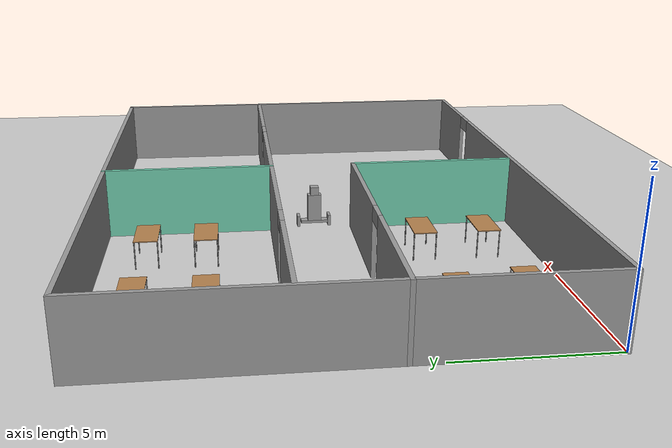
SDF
<sdf version="1.6">
 <world name="default">
  <model name="ground_plane">
   <static>1</static>
   <link name="link">
    <collision name="collision">
     <geometry><plane><normal>0 0 1</normal><size>100 100</size></plane></geometry>
     <surface>
      <contact><collide_bitmask>65535</collide_bitmask></contact>
      <friction><ode><mu>100</mu><mu2>50</mu2></ode></friction>
     </surface>
    </collision>
    <visual name="visual">
     <cast_shadows>0</cast_shadows>
     <geometry><plane><normal>0 0 1</normal><size>100 100</size></plane></geometry>
     <material>
      <script><uri>file://media/materials/scripts/gazebo.material</uri><name>Gazebo/Grey</name></script>
     </material>
    </visual>
   </link>
  </model>
  <model name="mybuilding">
   <pose>10 7.5 0 0 -0 0</pose>
   <link name="Wall_11">
    <collision name="Wall_11_Collision">
     <geometry><box><size>15.15 0.15 2.5</size></box></geometry>
     <pose>0 0 1.25 0 -0 0</pose>
    </collision>
    <visual name="Wall_11_Visual">
     <pose>0 0 1.25 0 -0 0</pose>
     <geometry><box><size>15.15 0.15 2.5</size></box></geometry>
     <material>
      <script><uri>file://media/materials/scripts/gazebo.material</uri><name>Gazebo/Grey</name></script>
      <ambient>1 1 1 1</ambient>
     </material>
     <meta><layer>0</layer></meta>
    </visual>
    <pose>-10 0 0 0 -0 1.5708</pose>
   </link>
   <link name="Wall_13">
    <collision name="Wall_13_Collision">
     <geometry><box><size>20.15 0.15 2.5</size></box></geometry>
     <pose>0 0 1.25 0 -0 0</pose>
    </collision>
    <visual name="Wall_13_Visual">
     <pose>0 0 1.25 0 -0 0</pose>
     <geometry><box><size>20.15 0.15 2.5</size></box></geometry>
     <material>
      <script><uri>file://media/materials/scripts/gazebo.material</uri><name>Gazebo/Grey</name></script>
      <ambient>1 1 1 1</ambient>
     </material>
     <meta><layer>0</layer></meta>
    </visual>
    <pose>0 7.5 0 0 -0 0</pose>
   </link>
   <link name="Wall_15">
    <collision name="Wall_15_Collision">
     <geometry><box><size>15.15 0.15 2.5</size></box></geometry>
     <pose>0 0 1.25 0 -0 0</pose>
    </collision>
    <visual name="Wall_15_Visual">
     <pose>0 0 1.25 0 -0 0</pose>
     <geometry><box><size>15.15 0.15 2.5</size></box></geometry>
     <material>
      <script><uri>file://media/materials/scripts/gazebo.material</uri><name>Gazebo/Grey</name></script>
      <ambient>1 1 1 1</ambient>
     </material>
     <meta><layer>0</layer></meta>
    </visual>
    <pose>10 0 0 0 0 -1.5708</pose>
   </link>
   <link name="Wall_17">
    <pose>0 1.5 0 0 -0 0</pose>
    <visual name="Wall_17_Visual_0">
     <pose>-7.81586 0 1.25 0 -0 0</pose>
     <geometry><box><size>4.51827 0.15 2.5</size></box></geometry>
     <material>
      <script><uri>file://media/materials/scripts/gazebo.material</uri><name>Gazebo/Grey</name></script>
      <ambient>1 1 1 1</ambient>
     </material>
     <meta><layer>0</layer></meta>
    </visual>
    <collision name="Wall_17_Collision_0">
     <geometry><box><size>4.51827 0.15 2.5</size></box></geometry>
     <pose>-7.81586 0 1.25 0 -0 0</pose>
    </collision>
    <visual name="Wall_17_Visual_1">
     <pose>0.10099 0 1.25 0 -0 0</pose>
     <geometry><box><size>9.51544 0.15 2.5</size></box></geometry>
     <material>
      <script><uri>file://media/materials/scripts/gazebo.material</uri><name>Gazebo/Grey</name></script>
      <ambient>1 1 1 1</ambient>
     </material>
     <meta><layer>0</layer></meta>
    </visual>
    <collision name="Wall_17_Collision_1">
     <geometry><box><size>9.51544 0.15 2.5</size></box></geometry>
     <pose>0.10099 0 1.25 0 -0 0</pose>
    </collision>
    <visual name="Wall_17_Visual_2">
     <pose>7.91685 0 1.25 0 -0 0</pose>
     <geometry><box><size>4.31629 0.15 2.5</size></box></geometry>
     <material>
      <script><uri>file://media/materials/scripts/gazebo.material</uri><name>Gazebo/Grey</name></script>
      <ambient>1 1 1 1</ambient>
     </material>
     <meta><layer>0</layer></meta>
    </visual>
    <collision name="Wall_17_Collision_2">
     <geometry><box><size>4.31629 0.15 2.5</size></box></geometry>
     <pose>7.91685 0 1.25 0 -0 0</pose>
    </collision>
    <visual name="Wall_17_Visual_3">
     <pose>-5.10673 0 2.25 0 -0 0</pose>
     <geometry><box><size>0.9 0.15 0.5</size></box></geometry>
     <material>
      <script><uri>file://media/materials/scripts/gazebo.material</uri><name>Gazebo/Grey</name></script>
      <ambient>1 1 1 1</ambient>
     </material>
     <meta><layer>0</layer></meta>
    </visual>
    <collision name="Wall_17_Collision_3">
     <geometry><box><size>0.9 0.15 0.5</size></box></geometry>
     <pose>-5.10673 0 2.25 0 -0 0</pose>
    </collision>
    <visual name="Wall_17_Visual_4">
     <pose>5.30871 0 2.25 0 -0 0</pose>
     <geometry><box><size>0.9 0.15 0.5</size></box></geometry>
     <material>
      <script><uri>file://media/materials/scripts/gazebo.material</uri><name>Gazebo/Grey</name></script>
      <ambient>1 1 1 1</ambient>
     </material>
     <meta><layer>0</layer></meta>
    </visual>
    <collision name="Wall_17_Collision_4">
     <geometry><box><size>0.9 0.15 0.5</size></box></geometry>
     <pose>5.30871 0 2.25 0 -0 0</pose>
    </collision>
   </link>
   <link name="Wall_19">
    <collision name="Wall_19_Collision">
     <geometry><box><size>6.15 0.15 2.5</size></box></geometry>
     <pose>0 0 1.25 0 -0 0</pose>
    </collision>
    <visual name="Wall_19_Visual">
     <pose>0 0 1.25 0 -0 0</pose>
     <geometry><box><size>6.15 0.15 2.5</size></box></geometry>
     <material>
      <script><uri>file://media/materials/scripts/gazebo.material</uri><name>Gazebo/Grey</name></script>
      <ambient>0.435294 0.796078 0.67451 1</ambient>
     </material>
     <meta><layer>0</layer></meta>
    </visual>
    <pose>0 4.5 0 0 0 -1.5708</pose>
   </link>
   <link name="Wall_21">
    <pose>-5 -1.5 0 0 -0 0</pose>
    <visual name="Wall_21_Visual_0">
     <pose>-2.77518 0 1.25 0 -0 0</pose>
     <geometry><box><size>4.59964 0.15 2.5</size></box></geometry>
     <material>
      <script><uri>file://media/materials/scripts/gazebo.material</uri><name>Gazebo/Grey</name></script>
      <ambient>1 1 1 1</ambient>
     </material>
     <meta><layer>0</layer></meta>
    </visual>
    <collision name="Wall_21_Collision_0">
     <geometry><box><size>4.59964 0.15 2.5</size></box></geometry>
     <pose>-2.77518 0 1.25 0 -0 0</pose>
    </collision>
    <visual name="Wall_21_Visual_1">
     <pose>2.74982 0 1.25 0 -0 0</pose>
     <geometry><box><size>4.65036 0.15 2.5</size></box></geometry>
     <material>
      <script><uri>file://media/materials/scripts/gazebo.material</uri><name>Gazebo/Grey</name></script>
      <ambient>1 1 1 1</ambient>
     </material>
     <meta><layer>0</layer></meta>
    </visual>
    <collision name="Wall_21_Collision_1">
     <geometry><box><size>4.65036 0.15 2.5</size></box></geometry>
     <pose>2.74982 0 1.25 0 -0 0</pose>
    </collision>
    <visual name="Wall_21_Visual_2">
     <pose>-0.02536 0 2.25 0 -0 0</pose>
     <geometry><box><size>0.9 0.15 0.5</size></box></geometry>
     <material>
      <script><uri>file://media/materials/scripts/gazebo.material</uri><name>Gazebo/Grey</name></script>
      <ambient>1 1 1 1</ambient>
     </material>
     <meta><layer>0</layer></meta>
    </visual>
    <collision name="Wall_21_Collision_2">
     <geometry><box><size>0.9 0.15 0.5</size></box></geometry>
     <pose>-0.02536 0 2.25 0 -0 0</pose>
    </collision>
   </link>
   <link name="Wall_24">
    <collision name="Wall_24_Collision">
     <geometry><box><size>6.15 0.15 2.5</size></box></geometry>
     <pose>0 0 1.25 0 -0 0</pose>
    </collision>
    <visual name="Wall_24_Visual">
     <pose>0 0 1.25 0 -0 0</pose>
     <geometry><box><size>6.15 0.15 2.5</size></box></geometry>
     <material>
      <script><uri>file://media/materials/scripts/gazebo.material</uri><name>Gazebo/Grey</name></script>
      <ambient>0.435294 0.796078 0.67451 1</ambient>
     </material>
     <meta><layer>0</layer></meta>
    </visual>
    <pose>0 -4.5 0 0 0 -1.5708</pose>
   </link>
   <link name="Wall_9">
    <pose>0 -7.5 0 0 -0 0</pose>
    <visual name="Wall_9_Visual_0">
     <pose>-2.20129 0 1.25 0 -0 0</pose>
     <geometry><box><size>15.7474 0.15 2.5</size></box></geometry>
     <material>
      <script><uri>file://media/materials/scripts/gazebo.material</uri><name>Gazebo/Grey</name></script>
      <ambient>1 1 1 1</ambient>
     </material>
     <meta><layer>0</layer></meta>
    </visual>
    <collision name="Wall_9_Collision_0">
     <geometry><box><size>15.7474 0.15 2.5</size></box></geometry>
     <pose>-2.20129 0 1.25 0 -0 0</pose>
    </collision>
    <visual name="Wall_9_Visual_1">
     <pose>8.32371 0 1.25 0 -0 0</pose>
     <geometry><box><size>3.50258 0.15 2.5</size></box></geometry>
     <material>
      <script><uri>file://media/materials/scripts/gazebo.material</uri><name>Gazebo/Grey</name></script>
      <ambient>1 1 1 1</ambient>
     </material>
     <meta><layer>0</layer></meta>
    </visual>
    <collision name="Wall_9_Collision_1">
     <geometry><box><size>3.50258 0.15 2.5</size></box></geometry>
     <pose>8.32371 0 1.25 0 -0 0</pose>
    </collision>
    <visual name="Wall_9_Visual_2">
     <pose>6.12242 0 2.25 0 -0 0</pose>
     <geometry><box><size>0.9 0.15 0.5</size></box></geometry>
     <material>
      <script><uri>file://media/materials/scripts/gazebo.material</uri><name>Gazebo/Grey</name></script>
      <ambient>1 1 1 1</ambient>
     </material>
     <meta><layer>0</layer></meta>
    </visual>
    <collision name="Wall_9_Collision_2">
     <geometry><box><size>0.9 0.15 0.5</size></box></geometry>
     <pose>6.12242 0 2.25 0 -0 0</pose>
    </collision>
   </link>
   <static>1</static>
  </model>
  <model name="table_0">
   <static>1</static>
   <link name="link">
    <collision name="surface">
     <pose>0 0 1 0 -0 0</pose>
     <geometry><box><size>1.5 0.8 0.03</size></box></geometry>
     <surface><friction><ode><mu>0.6</mu><mu2>0.6</mu2></ode></friction></surface>
    </collision>
    <visual name="visual1">
     <pose>0 0 1 0 -0 0</pose>
     <geometry><box><size>1.5 0.8 0.03</size></box></geometry>
     <material>
      <script><uri>file://media/materials/scripts/gazebo.material</uri><name>Gazebo/Wood</name></script>
     </material>
    </visual>
    <collision name="front_left_leg">
     <pose>0.68 0.38 0.5 0 -0 0</pose>
     <geometry><cylinder><radius>0.02</radius><length>1</length></cylinder></geometry>
    </collision>
    <visual name="front_left_leg">
     <pose>0.68 0.38 0.5 0 -0 0</pose>
     <geometry><cylinder><radius>0.02</radius><length>1</length></cylinder></geometry>
     <material>
      <script><uri>file://media/materials/scripts/gazebo.material</uri><name>Gazebo/Grey</name></script>
     </material>
    </visual>
    <collision name="front_right_leg">
     <pose>0.68 -0.38 0.5 0 -0 0</pose>
     <geometry><cylinder><radius>0.02</radius><length>1</length></cylinder></geometry>
    </collision>
    <visual name="front_right_leg">
     <pose>0.68 -0.38 0.5 0 -0 0</pose>
     <geometry><cylinder><radius>0.02</radius><length>1</length></cylinder></geometry>
     <material>
      <script><uri>file://media/materials/scripts/gazebo.material</uri><name>Gazebo/Grey</name></script>
     </material>
    </visual>
    <collision name="back_right_leg">
     <pose>-0.68 -0.38 0.5 0 -0 0</pose>
     <geometry><cylinder><radius>0.02</radius><length>1</length></cylinder></geometry>
    </collision>
    <visual name="back_right_leg">
     <pose>-0.68 -0.38 0.5 0 -0 0</pose>
     <geometry><cylinder><radius>0.02</radius><length>1</length></cylinder></geometry>
     <material>
      <script><uri>file://media/materials/scripts/gazebo.material</uri><name>Gazebo/Grey</name></script>
     </material>
    </visual>
    <collision name="back_left_leg">
     <pose>-0.68 0.38 0.5 0 -0 0</pose>
     <geometry><cylinder><radius>0.02</radius><length>1</length></cylinder></geometry>
    </collision>
    <visual name="back_left_leg">
     <pose>-0.68 0.38 0.5 0 -0 0</pose>
     <geometry><cylinder><radius>0.02</radius><length>1</length></cylinder></geometry>
     <material>
      <script><uri>file://media/materials/scripts/gazebo.material</uri><name>Gazebo/Grey</name></script>
     </material>
    </visual>
   </link>
   <pose>7.55328 13.3497 0 0 -0 0</pose>
  </model>
  <model name="table_clone_2">
   <static>1</static>
   <link name="link">
    <collision name="surface">
     <pose>0 0 1 0 -0 0</pose>
     <geometry><box><size>1.5 0.8 0.03</size></box></geometry>
     <surface><friction><ode><mu>0.6</mu><mu2>0.6</mu2></ode></friction></surface>
    </collision>
    <visual name="visual1">
     <pose>0 0 1 0 -0 0</pose>
     <geometry><box><size>1.5 0.8 0.03</size></box></geometry>
     <material>
      <script><uri>file://media/materials/scripts/gazebo.material</uri><name>Gazebo/Wood</name></script>
     </material>
    </visual>
    <collision name="front_left_leg">
     <pose>0.68 0.38 0.5 0 -0 0</pose>
     <geometry><cylinder><radius>0.02</radius><length>1</length></cylinder></geometry>
    </collision>
    <visual name="front_left_leg">
     <pose>0.68 0.38 0.5 0 -0 0</pose>
     <geometry><cylinder><radius>0.02</radius><length>1</length></cylinder></geometry>
     <material>
      <script><uri>file://media/materials/scripts/gazebo.material</uri><name>Gazebo/Grey</name></script>
     </material>
    </visual>
    <collision name="front_right_leg">
     <pose>0.68 -0.38 0.5 0 -0 0</pose>
     <geometry><cylinder><radius>0.02</radius><length>1</length></cylinder></geometry>
    </collision>
    <visual name="front_right_leg">
     <pose>0.68 -0.38 0.5 0 -0 0</pose>
     <geometry><cylinder><radius>0.02</radius><length>1</length></cylinder></geometry>
     <material>
      <script><uri>file://media/materials/scripts/gazebo.material</uri><name>Gazebo/Grey</name></script>
     </material>
    </visual>
    <collision name="back_right_leg">
     <pose>-0.68 -0.38 0.5 0 -0 0</pose>
     <geometry><cylinder><radius>0.02</radius><length>1</length></cylinder></geometry>
    </collision>
    <visual name="back_right_leg">
     <pose>-0.68 -0.38 0.5 0 -0 0</pose>
     <geometry><cylinder><radius>0.02</radius><length>1</length></cylinder></geometry>
     <material>
      <script><uri>file://media/materials/scripts/gazebo.material</uri><name>Gazebo/Grey</name></script>
     </material>
    </visual>
    <collision name="back_left_leg">
     <pose>-0.68 0.38 0.5 0 -0 0</pose>
     <geometry><cylinder><radius>0.02</radius><length>1</length></cylinder></geometry>
    </collision>
    <visual name="back_left_leg">
     <pose>-0.68 0.38 0.5 0 -0 0</pose>
     <geometry><cylinder><radius>0.02</radius><length>1</length></cylinder></geometry>
     <material>
      <script><uri>file://media/materials/scripts/gazebo.material</uri><name>Gazebo/Grey</name></script>
     </material>
    </visual>
   </link>
   <pose>3.3068 13.4619 0 0 -0 0</pose>
  </model>
  <model name="table_3">
   <static>1</static>
   <link name="link">
    <collision name="surface">
     <pose>0 0 1 0 -0 0</pose>
     <geometry><box><size>1.5 0.8 0.03</size></box></geometry>
     <surface><friction><ode><mu>0.6</mu><mu2>0.6</mu2></ode></friction></surface>
    </collision>
    <visual name="visual1">
     <pose>0 0 1 0 -0 0</pose>
     <geometry><box><size>1.5 0.8 0.03</size></box></geometry>
     <material>
      <script><uri>file://media/materials/scripts/gazebo.material</uri><name>Gazebo/Wood</name></script>
     </material>
    </visual>
    <collision name="front_left_leg">
     <pose>0.68 0.38 0.5 0 -0 0</pose>
     <geometry><cylinder><radius>0.02</radius><length>1</length></cylinder></geometry>
    </collision>
    <visual name="front_left_leg">
     <pose>0.68 0.38 0.5 0 -0 0</pose>
     <geometry><cylinder><radius>0.02</radius><length>1</length></cylinder></geometry>
     <material>
      <script><uri>file://media/materials/scripts/gazebo.material</uri><name>Gazebo/Grey</name></script>
     </material>
    </visual>
    <collision name="front_right_leg">
     <pose>0.68 -0.38 0.5 0 -0 0</pose>
     <geometry><cylinder><radius>0.02</radius><length>1</length></cylinder></geometry>
    </collision>
    <visual name="front_right_leg">
     <pose>0.68 -0.38 0.5 0 -0 0</pose>
     <geometry><cylinder><radius>0.02</radius><length>1</length></cylinder></geometry>
     <material>
      <script><uri>file://media/materials/scripts/gazebo.material</uri><name>Gazebo/Grey</name></script>
     </material>
    </visual>
    <collision name="back_right_leg">
     <pose>-0.68 -0.38 0.5 0 -0 0</pose>
     <geometry><cylinder><radius>0.02</radius><length>1</length></cylinder></geometry>
    </collision>
    <visual name="back_right_leg">
     <pose>-0.68 -0.38 0.5 0 -0 0</pose>
     <geometry><cylinder><radius>0.02</radius><length>1</length></cylinder></geometry>
     <material>
      <script><uri>file://media/materials/scripts/gazebo.material</uri><name>Gazebo/Grey</name></script>
     </material>
    </visual>
    <collision name="back_left_leg">
     <pose>-0.68 0.38 0.5 0 -0 0</pose>
     <geometry><cylinder><radius>0.02</radius><length>1</length></cylinder></geometry>
    </collision>
    <visual name="back_left_leg">
     <pose>-0.68 0.38 0.5 0 -0 0</pose>
     <geometry><cylinder><radius>0.02</radius><length>1</length></cylinder></geometry>
     <material>
      <script><uri>file://media/materials/scripts/gazebo.material</uri><name>Gazebo/Grey</name></script>
     </material>
    </visual>
   </link>
   <pose>7.33008 4.00792 0 0 -0 0</pose>
  </model>
  <model name="table_4">
   <static>1</static>
   <link name="link">
    <collision name="surface">
     <pose>0 0 1 0 -0 0</pose>
     <geometry><box><size>1.5 0.8 0.03</size></box></geometry>
     <surface><friction><ode><mu>0.6</mu><mu2>0.6</mu2></ode></friction></surface>
    </collision>
    <visual name="visual1">
     <pose>0 0 1 0 -0 0</pose>
     <geometry><box><size>1.5 0.8 0.03</size></box></geometry>
     <material>
      <script><uri>file://media/materials/scripts/gazebo.material</uri><name>Gazebo/Wood</name></script>
     </material>
    </visual>
    <collision name="front_left_leg">
     <pose>0.68 0.38 0.5 0 -0 0</pose>
     <geometry><cylinder><radius>0.02</radius><length>1</length></cylinder></geometry>
    </collision>
    <visual name="front_left_leg">
     <pose>0.68 0.38 0.5 0 -0 0</pose>
     <geometry><cylinder><radius>0.02</radius><length>1</length></cylinder></geometry>
     <material>
      <script><uri>file://media/materials/scripts/gazebo.material</uri><name>Gazebo/Grey</name></script>
     </material>
    </visual>
    <collision name="front_right_leg">
     <pose>0.68 -0.38 0.5 0 -0 0</pose>
     <geometry><cylinder><radius>0.02</radius><length>1</length></cylinder></geometry>
    </collision>
    <visual name="front_right_leg">
     <pose>0.68 -0.38 0.5 0 -0 0</pose>
     <geometry><cylinder><radius>0.02</radius><length>1</length></cylinder></geometry>
     <material>
      <script><uri>file://media/materials/scripts/gazebo.material</uri><name>Gazebo/Grey</name></script>
     </material>
    </visual>
    <collision name="back_right_leg">
     <pose>-0.68 -0.38 0.5 0 -0 0</pose>
     <geometry><cylinder><radius>0.02</radius><length>1</length></cylinder></geometry>
    </collision>
    <visual name="back_right_leg">
     <pose>-0.68 -0.38 0.5 0 -0 0</pose>
     <geometry><cylinder><radius>0.02</radius><length>1</length></cylinder></geometry>
     <material>
      <script><uri>file://media/materials/scripts/gazebo.material</uri><name>Gazebo/Grey</name></script>
     </material>
    </visual>
    <collision name="back_left_leg">
     <pose>-0.68 0.38 0.5 0 -0 0</pose>
     <geometry><cylinder><radius>0.02</radius><length>1</length></cylinder></geometry>
    </collision>
    <visual name="back_left_leg">
     <pose>-0.68 0.38 0.5 0 -0 0</pose>
     <geometry><cylinder><radius>0.02</radius><length>1</length></cylinder></geometry>
     <material>
      <script><uri>file://media/materials/scripts/gazebo.material</uri><name>Gazebo/Grey</name></script>
     </material>
    </visual>
   </link>
   <pose>2.63408 3.89107 0 0 -0 0</pose>
  </model>
  <model name="table_clone_3">
   <static>1</static>
   <link name="link">
    <collision name="surface">
     <pose>0 0 1 0 -0 0</pose>
     <geometry><box><size>1.5 0.8 0.03</size></box></geometry>
     <surface><friction><ode><mu>0.6</mu><mu2>0.6</mu2></ode></friction></surface>
    </collision>
    <visual name="visual1">
     <pose>0 0 1 0 -0 0</pose>
     <geometry><box><size>1.5 0.8 0.03</size></box></geometry>
     <material>
      <script><uri>file://media/materials/scripts/gazebo.material</uri><name>Gazebo/Wood</name></script>
     </material>
    </visual>
    <collision name="front_left_leg">
     <pose>0.68 0.38 0.5 0 -0 0</pose>
     <geometry><cylinder><radius>0.02</radius><length>1</length></cylinder></geometry>
    </collision>
    <visual name="front_left_leg">
     <pose>0.68 0.38 0.5 0 -0 0</pose>
     <geometry><cylinder><radius>0.02</radius><length>1</length></cylinder></geometry>
     <material>
      <script><uri>file://media/materials/scripts/gazebo.material</uri><name>Gazebo/Grey</name></script>
     </material>
    </visual>
    <collision name="front_right_leg">
     <pose>0.68 -0.38 0.5 0 -0 0</pose>
     <geometry><cylinder><radius>0.02</radius><length>1</length></cylinder></geometry>
    </collision>
    <visual name="front_right_leg">
     <pose>0.68 -0.38 0.5 0 -0 0</pose>
     <geometry><cylinder><radius>0.02</radius><length>1</length></cylinder></geometry>
     <material>
      <script><uri>file://media/materials/scripts/gazebo.material</uri><name>Gazebo/Grey</name></script>
     </material>
    </visual>
    <collision name="back_right_leg">
     <pose>-0.68 -0.38 0.5 0 -0 0</pose>
     <geometry><cylinder><radius>0.02</radius><length>1</length></cylinder></geometry>
    </collision>
    <visual name="back_right_leg">
     <pose>-0.68 -0.38 0.5 0 -0 0</pose>
     <geometry><cylinder><radius>0.02</radius><length>1</length></cylinder></geometry>
     <material>
      <script><uri>file://media/materials/scripts/gazebo.material</uri><name>Gazebo/Grey</name></script>
     </material>
    </visual>
    <collision name="back_left_leg">
     <pose>-0.68 0.38 0.5 0 -0 0</pose>
     <geometry><cylinder><radius>0.02</radius><length>1</length></cylinder></geometry>
    </collision>
    <visual name="back_left_leg">
     <pose>-0.68 0.38 0.5 0 -0 0</pose>
     <geometry><cylinder><radius>0.02</radius><length>1</length></cylinder></geometry>
     <material>
      <script><uri>file://media/materials/scripts/gazebo.material</uri><name>Gazebo/Grey</name></script>
     </material>
    </visual>
   </link>
   <pose>7.50168 11.381 0 0 -0 0</pose>
  </model>
  <model name="table_clone_4">
   <static>1</static>
   <link name="link">
    <collision name="surface">
     <pose>0 0 1 0 -0 0</pose>
     <geometry><box><size>1.5 0.8 0.03</size></box></geometry>
     <surface><friction><ode><mu>0.6</mu><mu2>0.6</mu2></ode></friction></surface>
    </collision>
    <visual name="visual1">
     <pose>0 0 1 0 -0 0</pose>
     <geometry><box><size>1.5 0.8 0.03</size></box></geometry>
     <material>
      <script><uri>file://media/materials/scripts/gazebo.material</uri><name>Gazebo/Wood</name></script>
     </material>
    </visual>
    <collision name="front_left_leg">
     <pose>0.68 0.38 0.5 0 -0 0</pose>
     <geometry><cylinder><radius>0.02</radius><length>1</length></cylinder></geometry>
    </collision>
    <visual name="front_left_leg">
     <pose>0.68 0.38 0.5 0 -0 0</pose>
     <geometry><cylinder><radius>0.02</radius><length>1</length></cylinder></geometry>
     <material>
      <script><uri>file://media/materials/scripts/gazebo.material</uri><name>Gazebo/Grey</name></script>
     </material>
    </visual>
    <collision name="front_right_leg">
     <pose>0.68 -0.38 0.5 0 -0 0</pose>
     <geometry><cylinder><radius>0.02</radius><length>1</length></cylinder></geometry>
    </collision>
    <visual name="front_right_leg">
     <pose>0.68 -0.38 0.5 0 -0 0</pose>
     <geometry><cylinder><radius>0.02</radius><length>1</length></cylinder></geometry>
     <material>
      <script><uri>file://media/materials/scripts/gazebo.material</uri><name>Gazebo/Grey</name></script>
     </material>
    </visual>
    <collision name="back_right_leg">
     <pose>-0.68 -0.38 0.5 0 -0 0</pose>
     <geometry><cylinder><radius>0.02</radius><length>1</length></cylinder></geometry>
    </collision>
    <visual name="back_right_leg">
     <pose>-0.68 -0.38 0.5 0 -0 0</pose>
     <geometry><cylinder><radius>0.02</radius><length>1</length></cylinder></geometry>
     <material>
      <script><uri>file://media/materials/scripts/gazebo.material</uri><name>Gazebo/Grey</name></script>
     </material>
    </visual>
    <collision name="back_left_leg">
     <pose>-0.68 0.38 0.5 0 -0 0</pose>
     <geometry><cylinder><radius>0.02</radius><length>1</length></cylinder></geometry>
    </collision>
    <visual name="back_left_leg">
     <pose>-0.68 0.38 0.5 0 -0 0</pose>
     <geometry><cylinder><radius>0.02</radius><length>1</length></cylinder></geometry>
     <material>
      <script><uri>file://media/materials/scripts/gazebo.material</uri><name>Gazebo/Grey</name></script>
     </material>
    </visual>
   </link>
   <pose>3.25865 11.3215 0 0 -0 0</pose>
  </model>
  <model name="table_clone_5">
   <static>1</static>
   <link name="link">
    <collision name="surface">
     <pose>0 0 1 0 -0 0</pose>
     <geometry><box><size>1.5 0.8 0.03</size></box></geometry>
     <surface><friction><ode><mu>0.6</mu><mu2>0.6</mu2></ode></friction></surface>
    </collision>
    <visual name="visual1">
     <pose>0 0 1 0 -0 0</pose>
     <geometry><box><size>1.5 0.8 0.03</size></box></geometry>
     <material>
      <script><uri>file://media/materials/scripts/gazebo.material</uri><name>Gazebo/Wood</name></script>
     </material>
    </visual>
    <collision name="front_left_leg">
     <pose>0.68 0.38 0.5 0 -0 0</pose>
     <geometry><cylinder><radius>0.02</radius><length>1</length></cylinder></geometry>
    </collision>
    <visual name="front_left_leg">
     <pose>0.68 0.38 0.5 0 -0 0</pose>
     <geometry><cylinder><radius>0.02</radius><length>1</length></cylinder></geometry>
     <material>
      <script><uri>file://media/materials/scripts/gazebo.material</uri><name>Gazebo/Grey</name></script>
     </material>
    </visual>
    <collision name="front_right_leg">
     <pose>0.68 -0.38 0.5 0 -0 0</pose>
     <geometry><cylinder><radius>0.02</radius><length>1</length></cylinder></geometry>
    </collision>
    <visual name="front_right_leg">
     <pose>0.68 -0.38 0.5 0 -0 0</pose>
     <geometry><cylinder><radius>0.02</radius><length>1</length></cylinder></geometry>
     <material>
      <script><uri>file://media/materials/scripts/gazebo.material</uri><name>Gazebo/Grey</name></script>
     </material>
    </visual>
    <collision name="back_right_leg">
     <pose>-0.68 -0.38 0.5 0 -0 0</pose>
     <geometry><cylinder><radius>0.02</radius><length>1</length></cylinder></geometry>
    </collision>
    <visual name="back_right_leg">
     <pose>-0.68 -0.38 0.5 0 -0 0</pose>
     <geometry><cylinder><radius>0.02</radius><length>1</length></cylinder></geometry>
     <material>
      <script><uri>file://media/materials/scripts/gazebo.material</uri><name>Gazebo/Grey</name></script>
     </material>
    </visual>
    <collision name="back_left_leg">
     <pose>-0.68 0.38 0.5 0 -0 0</pose>
     <geometry><cylinder><radius>0.02</radius><length>1</length></cylinder></geometry>
    </collision>
    <visual name="back_left_leg">
     <pose>-0.68 0.38 0.5 0 -0 0</pose>
     <geometry><cylinder><radius>0.02</radius><length>1</length></cylinder></geometry>
     <material>
      <script><uri>file://media/materials/scripts/gazebo.material</uri><name>Gazebo/Grey</name></script>
     </material>
    </visual>
   </link>
   <pose>7.31912 1.80991 0 0 -0 0</pose>
  </model>
  <model name="table_clone_6">
   <static>1</static>
   <link name="link">
    <collision name="surface">
     <pose>0 0 1 0 -0 0</pose>
     <geometry><box><size>1.5 0.8 0.03</size></box></geometry>
     <surface><friction><ode><mu>0.6</mu><mu2>0.6</mu2></ode></friction></surface>
    </collision>
    <visual name="visual1">
     <pose>0 0 1 0 -0 0</pose>
     <geometry><box><size>1.5 0.8 0.03</size></box></geometry>
     <material>
      <script><uri>file://media/materials/scripts/gazebo.material</uri><name>Gazebo/Wood</name></script>
     </material>
    </visual>
    <collision name="front_left_leg">
     <pose>0.68 0.38 0.5 0 -0 0</pose>
     <geometry><cylinder><radius>0.02</radius><length>1</length></cylinder></geometry>
    </collision>
    <visual name="front_left_leg">
     <pose>0.68 0.38 0.5 0 -0 0</pose>
     <geometry><cylinder><radius>0.02</radius><length>1</length></cylinder></geometry>
     <material>
      <script><uri>file://media/materials/scripts/gazebo.material</uri><name>Gazebo/Grey</name></script>
     </material>
    </visual>
    <collision name="front_right_leg">
     <pose>0.68 -0.38 0.5 0 -0 0</pose>
     <geometry><cylinder><radius>0.02</radius><length>1</length></cylinder></geometry>
    </collision>
    <visual name="front_right_leg">
     <pose>0.68 -0.38 0.5 0 -0 0</pose>
     <geometry><cylinder><radius>0.02</radius><length>1</length></cylinder></geometry>
     <material>
      <script><uri>file://media/materials/scripts/gazebo.material</uri><name>Gazebo/Grey</name></script>
     </material>
    </visual>
    <collision name="back_right_leg">
     <pose>-0.68 -0.38 0.5 0 -0 0</pose>
     <geometry><cylinder><radius>0.02</radius><length>1</length></cylinder></geometry>
    </collision>
    <visual name="back_right_leg">
     <pose>-0.68 -0.38 0.5 0 -0 0</pose>
     <geometry><cylinder><radius>0.02</radius><length>1</length></cylinder></geometry>
     <material>
      <script><uri>file://media/materials/scripts/gazebo.material</uri><name>Gazebo/Grey</name></script>
     </material>
    </visual>
    <collision name="back_left_leg">
     <pose>-0.68 0.38 0.5 0 -0 0</pose>
     <geometry><cylinder><radius>0.02</radius><length>1</length></cylinder></geometry>
    </collision>
    <visual name="back_left_leg">
     <pose>-0.68 0.38 0.5 0 -0 0</pose>
     <geometry><cylinder><radius>0.02</radius><length>1</length></cylinder></geometry>
     <material>
      <script><uri>file://media/materials/scripts/gazebo.material</uri><name>Gazebo/Grey</name></script>
     </material>
    </visual>
   </link>
   <pose>2.86362 1.71508 0 0 -0 0</pose>
  </model>
  <model name="robot">
   <link name="link_0">
    <inertial>
     <mass>1</mass>
     <inertia>
      <ixx>0.166667</ixx>
      <ixy>0</ixy>
      <ixz>0</ixz>
      <iyy>0.166667</iyy>
      <iyz>0</iyz>
      <izz>0.166667</izz>
     </inertia>
    </inertial>
    <visual name="visual">
     <geometry><box><size>0.3 1 0.1</size></box></geometry>
     <material>
      <lighting>1</lighting>
      <script><uri>file://media/materials/scripts/gazebo.material</uri><name>Gazebo/Grey</name></script>
      <shader type="pixel"><normal_map>__default__</normal_map></shader>
      <ambient>0.3 0.3 0.3 1</ambient>
      <diffuse>0.7 0.7 0.7 1</diffuse>
      <specular>0.01 0.01 0.01 1</specular>
      <emissive>0 0 0 1</emissive>
     </material>
    </visual>
    <collision name="collision">
     <geometry><box><size>0.3 1 0.1</size></box></geometry>
     <surface>
      <friction>
       <ode><mu>1</mu><mu2>1</mu2><fdir1>0 0 0</fdir1><slip1>0</slip1><slip2>0</slip2></ode>
       <torsional>
        <coefficient>1</coefficient>
        <patch_radius>0</patch_radius>
        <surface_radius>0</surface_radius>
        <use_patch_radius>1</use_patch_radius>
        <ode><slip>0</slip></ode>
       </torsional>
      </friction>
      <bounce><restitution_coefficient>0</restitution_coefficient><threshold>1e+06</threshold></bounce>
      <contact>
       <collide_without_contact>0</collide_without_contact>
       <collide_without_contact_bitmask>1</collide_without_contact_bitmask>
       <collide_bitmask>1</collide_bitmask>
       <ode>
        <soft_cfm>0</soft_cfm>
        <soft_erp>0.2</soft_erp>
        <kp>1e+13</kp>
        <kd>1</kd>
        <max_vel>0.01</max_vel>
        <min_depth>0</min_depth>
       </ode>
       <bullet>
        <split_impulse>1</split_impulse>
        <split_impulse_penetration_threshold>-0.01</split_impulse_penetration_threshold>
        <soft_cfm>0</soft_cfm>
        <soft_erp>0.2</soft_erp>
        <kp>1e+13</kp>
        <kd>1</kd>
       </bullet>
      </contact>
     </surface>
    </collision>
   </link>
   <link name="link_0_0">
    <pose>-0.000234 -4e-06 0.55 8e-06 -0.000508 3e-06</pose>
    <inertial>
     <mass>1</mass>
     <inertia>
      <ixx>0.166667</ixx>
      <ixy>0</ixy>
      <ixz>0</ixz>
      <iyy>0.166667</iyy>
      <iyz>0</iyz>
      <izz>0.166667</izz>
     </inertia>
    </inertial>
    <visual name="visual">
     <geometry><box><size>0.3 0.5 1</size></box></geometry>
     <material>
      <lighting>1</lighting>
      <script><uri>file://media/materials/scripts/gazebo.material</uri><name>Gazebo/Grey</name></script>
      <shader type="pixel"><normal_map>__default__</normal_map></shader>
      <ambient>0.3 0.3 0.3 1</ambient>
      <diffuse>0.7 0.7 0.7 1</diffuse>
      <specular>0.01 0.01 0.01 1</specular>
      <emissive>0 0 0 1</emissive>
     </material>
    </visual>
    <collision name="collision">
     <geometry><box><size>0.3 0.5 1</size></box></geometry>
     <surface>
      <friction>
       <ode><mu>1</mu><mu2>1</mu2><fdir1>0 0 0</fdir1><slip1>0</slip1><slip2>0</slip2></ode>
       <torsional>
        <coefficient>1</coefficient>
        <patch_radius>0</patch_radius>
        <surface_radius>0</surface_radius>
        <use_patch_radius>1</use_patch_radius>
        <ode><slip>0</slip></ode>
       </torsional>
      </friction>
      <bounce><restitution_coefficient>0</restitution_coefficient><threshold>1e+06</threshold></bounce>
      <contact>
       <collide_without_contact>0</collide_without_contact>
       <collide_without_contact_bitmask>1</collide_without_contact_bitmask>
       <collide_bitmask>1</collide_bitmask>
       <ode>
        <soft_cfm>0</soft_cfm>
        <soft_erp>0.2</soft_erp>
        <kp>1e+13</kp>
        <kd>1</kd>
        <max_vel>0.01</max_vel>
        <min_depth>0</min_depth>
       </ode>
       <bullet>
        <split_impulse>1</split_impulse>
        <split_impulse_penetration_threshold>-0.01</split_impulse_penetration_threshold>
        <soft_cfm>0</soft_cfm>
        <soft_erp>0.2</soft_erp>
        <kp>1e+13</kp>
        <kd>1</kd>
       </bullet>
      </contact>
     </surface>
    </collision>
   </link>
   <link name="link_0_1">
    <pose>0 0.6 0.045 0 -0 0</pose>
    <inertial>
     <mass>1</mass>
     <inertia>
      <ixx>0.166667</ixx>
      <ixy>0</ixy>
      <ixz>0</ixz>
      <iyy>0.166667</iyy>
      <iyz>0</iyz>
      <izz>0.166667</izz>
     </inertia>
    </inertial>
    <visual name="visual">
     <geometry><box><size>0.4 0.1 0.4</size></box></geometry>
     <material>
      <lighting>1</lighting>
      <script><uri>file://media/materials/scripts/gazebo.material</uri><name>Gazebo/Grey</name></script>
      <shader type="pixel"><normal_map>__default__</normal_map></shader>
      <ambient>0.3 0.3 0.3 1</ambient>
      <diffuse>0.7 0.7 0.7 1</diffuse>
      <specular>0.01 0.01 0.01 1</specular>
      <emissive>0 0 0 1</emissive>
     </material>
    </visual>
    <collision name="collision">
     <geometry><box><size>0.4 0.1 0.4</size></box></geometry>
     <surface>
      <friction>
       <ode><mu>1</mu><mu2>1</mu2><fdir1>0 0 0</fdir1><slip1>0</slip1><slip2>0</slip2></ode>
       <torsional>
        <coefficient>1</coefficient>
        <patch_radius>0</patch_radius>
        <surface_radius>0</surface_radius>
        <use_patch_radius>1</use_patch_radius>
        <ode><slip>0</slip></ode>
       </torsional>
      </friction>
      <bounce><restitution_coefficient>0</restitution_coefficient><threshold>1e+06</threshold></bounce>
      <contact>
       <collide_without_contact>0</collide_without_contact>
       <collide_without_contact_bitmask>1</collide_without_contact_bitmask>
       <collide_bitmask>1</collide_bitmask>
       <ode>
        <soft_cfm>0</soft_cfm>
        <soft_erp>0.2</soft_erp>
        <kp>1e+13</kp>
        <kd>1</kd>
        <max_vel>0.01</max_vel>
        <min_depth>0</min_depth>
       </ode>
       <bullet>
        <split_impulse>1</split_impulse>
        <split_impulse_penetration_threshold>-0.01</split_impulse_penetration_threshold>
        <soft_cfm>0</soft_cfm>
        <soft_erp>0.2</soft_erp>
        <kp>1e+13</kp>
        <kd>1</kd>
       </bullet>
      </contact>
     </surface>
    </collision>
   </link>
   <link name="link_0_1_clone">
    <pose>0 -0.55 0.045 0 -0 0</pose>
    <inertial>
     <mass>1</mass>
     <inertia>
      <ixx>0.166667</ixx>
      <ixy>0</ixy>
      <ixz>0</ixz>
      <iyy>0.166667</iyy>
      <iyz>0</iyz>
      <izz>0.166667</izz>
     </inertia>
    </inertial>
    <visual name="visual_0">
     <geometry><box><size>0.4 0.1 0.4</size></box></geometry>
     <material>
      <lighting>1</lighting>
      <script><uri>file://media/materials/scripts/gazebo.material</uri><name>Gazebo/Grey</name></script>
      <shader type="pixel"><normal_map>__default__</normal_map></shader>
      <ambient>0.3 0.3 0.3 1</ambient>
      <diffuse>0.7 0.7 0.7 1</diffuse>
      <specular>0.01 0.01 0.01 1</specular>
      <emissive>0 0 0 1</emissive>
     </material>
    </visual>
    <collision name="collision">
     <geometry><box><size>0.4 0.1 0.4</size></box></geometry>
     <surface>
      <friction>
       <ode><mu>1</mu><mu2>1</mu2><fdir1>0 0 0</fdir1><slip1>0</slip1><slip2>0</slip2></ode>
       <torsional>
        <coefficient>1</coefficient>
        <patch_radius>0</patch_radius>
        <surface_radius>0</surface_radius>
        <use_patch_radius>1</use_patch_radius>
        <ode><slip>0</slip></ode>
       </torsional>
      </friction>
      <bounce><restitution_coefficient>0</restitution_coefficient><threshold>1e+06</threshold></bounce>
      <contact>
       <collide_without_contact>0</collide_without_contact>
       <collide_without_contact_bitmask>1</collide_without_contact_bitmask>
       <collide_bitmask>1</collide_bitmask>
       <ode>
        <soft_cfm>0</soft_cfm>
        <soft_erp>0.2</soft_erp>
        <kp>1e+13</kp>
        <kd>1</kd>
        <max_vel>0.01</max_vel>
        <min_depth>0</min_depth>
       </ode>
       <bullet>
        <split_impulse>1</split_impulse>
        <split_impulse_penetration_threshold>-0.01</split_impulse_penetration_threshold>
        <soft_cfm>0</soft_cfm>
        <soft_erp>0.2</soft_erp>
        <kp>1e+13</kp>
        <kd>1</kd>
       </bullet>
      </contact>
     </surface>
    </collision>
   </link>
   <link name="link_1_0">
    <pose>-0.000564 -9e-06 1.2 8e-06 -0.000508 3e-06</pose>
    <inertial>
     <mass>1</mass>
     <inertia>
      <ixx>0.166667</ixx>
      <ixy>0</ixy>
      <ixz>0</ixz>
      <iyy>0.166667</iyy>
      <iyz>0</iyz>
      <izz>0.166667</izz>
     </inertia>
    </inertial>
    <visual name="visual">
     <geometry><box><size>0.3 0.3 0.3</size></box></geometry>
     <material>
      <lighting>1</lighting>
      <script><uri>file://media/materials/scripts/gazebo.material</uri><name>Gazebo/Grey</name></script>
      <shader type="pixel"><normal_map>__default__</normal_map></shader>
      <ambient>0.3 0.3 0.3 1</ambient>
      <diffuse>0.7 0.7 0.7 1</diffuse>
      <specular>0.01 0.01 0.01 1</specular>
      <emissive>0 0 0 1</emissive>
     </material>
    </visual>
    <collision name="collision">
     <geometry><box><size>0.3 0.3 0.3</size></box></geometry>
     <surface>
      <friction>
       <ode><mu>1</mu><mu2>1</mu2><fdir1>0 0 0</fdir1><slip1>0</slip1><slip2>0</slip2></ode>
       <torsional>
        <coefficient>1</coefficient>
        <patch_radius>0</patch_radius>
        <surface_radius>0</surface_radius>
        <use_patch_radius>1</use_patch_radius>
        <ode><slip>0</slip></ode>
       </torsional>
      </friction>
      <bounce><restitution_coefficient>0</restitution_coefficient><threshold>1e+06</threshold></bounce>
      <contact>
       <collide_without_contact>0</collide_without_contact>
       <collide_without_contact_bitmask>1</collide_without_contact_bitmask>
       <collide_bitmask>1</collide_bitmask>
       <ode>
        <soft_cfm>0</soft_cfm>
        <soft_erp>0.2</soft_erp>
        <kp>1e+13</kp>
        <kd>1</kd>
        <max_vel>0.01</max_vel>
        <min_depth>0</min_depth>
       </ode>
       <bullet>
        <split_impulse>1</split_impulse>
        <split_impulse_penetration_threshold>-0.01</split_impulse_penetration_threshold>
        <soft_cfm>0</soft_cfm>
        <soft_erp>0.2</soft_erp>
        <kp>1e+13</kp>
        <kd>1</kd>
       </bullet>
      </contact>
     </surface>
    </collision>
   </link>
   <joint name="link_0_0_JOINT_0" type="fixed">
    <parent>link_0</parent>
    <child>link_0_0</child>
    <physics>
     <ode><limit><cfm>0</cfm><erp>0.2</erp></limit><suspension><cfm>0</cfm><erp>0.2</erp></suspension></ode>
    </physics>
   </joint>
   <joint name="link_0_1_JOINT_0" type="fixed">
    <parent>link_0</parent>
    <child>link_0_1</child>
    <axis>
     <xyz>1 0 0</xyz>
     <use_parent_model_frame>0</use_parent_model_frame>
     <limit>
      <lower>-1.79769e+308</lower>
      <upper>1.79769e+308</upper>
      <effort>-1</effort>
      <velocity>-1</velocity>
     </limit>
     <dynamics>
      <spring_reference>0</spring_reference>
      <spring_stiffness>0</spring_stiffness>
      <damping>0</damping>
     </dynamics>
    </axis>
    <physics>
     <ode><limit><cfm>0</cfm><erp>0.2</erp></limit><suspension><cfm>0</cfm><erp>0.2</erp></suspension></ode>
    </physics>
   </joint>
   <joint name="link_0_1_clone_JOINT_1" type="fixed">
    <parent>link_0</parent>
    <child>link_0_1_clone</child>
    <physics>
     <ode><limit><cfm>0</cfm><erp>0.2</erp></limit><suspension><cfm>0</cfm><erp>0.2</erp></suspension></ode>
    </physics>
   </joint>
   <joint name="link_1_0_JOINT_1" type="fixed">
    <parent>link_0_0</parent>
    <child>link_1_0</child>
    <axis>
     <xyz>1 0 0</xyz>
     <use_parent_model_frame>0</use_parent_model_frame>
     <limit>
      <lower>-1.79769e+308</lower>
      <upper>1.79769e+308</upper>
      <effort>-1</effort>
      <velocity>-1</velocity>
     </limit>
     <dynamics>
      <spring_reference>0</spring_reference>
      <spring_stiffness>0</spring_stiffness>
      <damping>0</damping>
      <friction>0</friction>
     </dynamics>
    </axis>
    <physics>
     <ode><limit><cfm>0</cfm><erp>0.2</erp></limit><suspension><cfm>0</cfm><erp>0.2</erp></suspension></ode>
    </physics>
   </joint>
   <static>0</static>
   <pose>10.4005 7.38978 0.154999 -2e-06 0 0.018206</pose>
  </model>
  <model name="my_ball">
   <link name="link_0">
    <inertial>
     <mass>1</mass>
     <inertia><ixx>0.1</ixx><ixy>0</ixy><ixz>0</ixz><iyy>0.1</iyy><iyz>0</iyz><izz>0.1</izz></inertia>
    </inertial>
    <visual name="visual">
     <geometry><sphere><radius>0.1</radius></sphere></geometry>
     <material>
      <lighting>1</lighting>
      <script><uri>file://media/materials/scripts/gazebo.material</uri><name>Gazebo/Grey</name></script>
      <shader type="pixel"><normal_map>__default__</normal_map></shader>
      <ambient>1 1 1 1</ambient>
      <diffuse>1 1 1 1</diffuse>
      <specular>1 1 1 1</specular>
      <emissive>1 1 1 1</emissive>
     </material>
    </visual>
    <collision name="collision">
     <geometry><sphere><radius>0.1</radius></sphere></geometry>
     <surface>
      <friction>
       <ode><mu>1</mu><mu2>1</mu2><fdir1>0 0 0</fdir1><slip1>0</slip1><slip2>0</slip2></ode>
       <torsional>
        <coefficient>1</coefficient>
        <patch_radius>0</patch_radius>
        <surface_radius>0</surface_radius>
        <use_patch_radius>1</use_patch_radius>
        <ode><slip>0</slip></ode>
       </torsional>
      </friction>
      <bounce><restitution_coefficient>0</restitution_coefficient><threshold>1e+06</threshold></bounce>
      <contact>
       <collide_without_contact>0</collide_without_contact>
       <collide_without_contact_bitmask>1</collide_without_contact_bitmask>
       <collide_bitmask>1</collide_bitmask>
       <ode>
        <soft_cfm>0</soft_cfm>
        <soft_erp>0.2</soft_erp>
        <kp>1e+13</kp>
        <kd>1</kd>
        <max_vel>0.01</max_vel>
        <min_depth>0</min_depth>
       </ode>
       <bullet>
        <split_impulse>1</split_impulse>
        <split_impulse_penetration_threshold>-0.01</split_impulse_penetration_threshold>
        <soft_cfm>0</soft_cfm>
        <soft_erp>0.2</soft_erp>
        <kp>1e+13</kp>
        <kd>1</kd>
       </bullet>
      </contact>
     </surface>
    </collision>
   </link>
   <static>0</static>
   <pose>9.15594 -0.940557 0.1 0 -0 0</pose>
  </model>
 </world>
</sdf>
